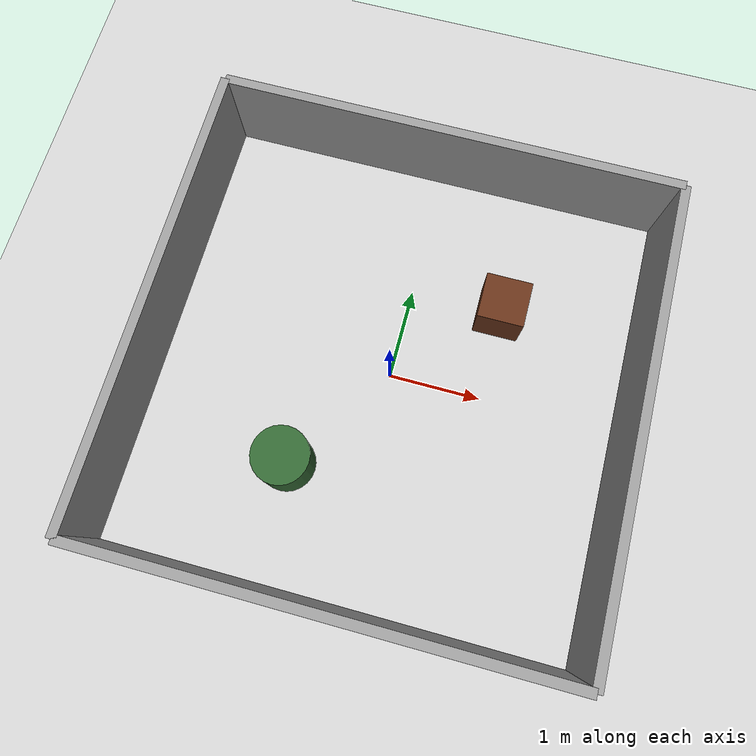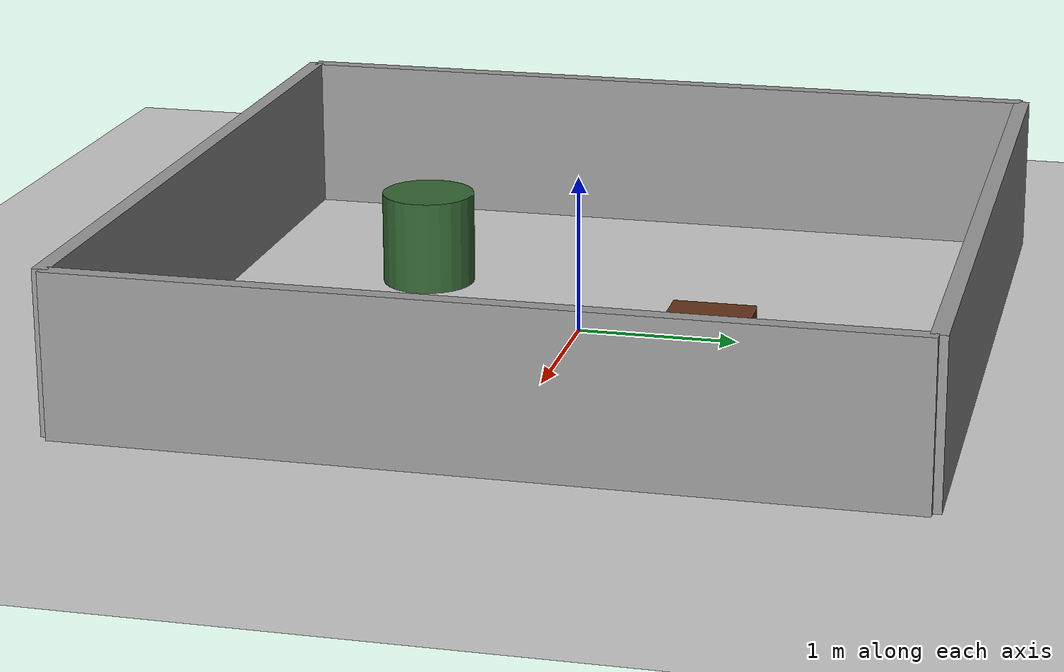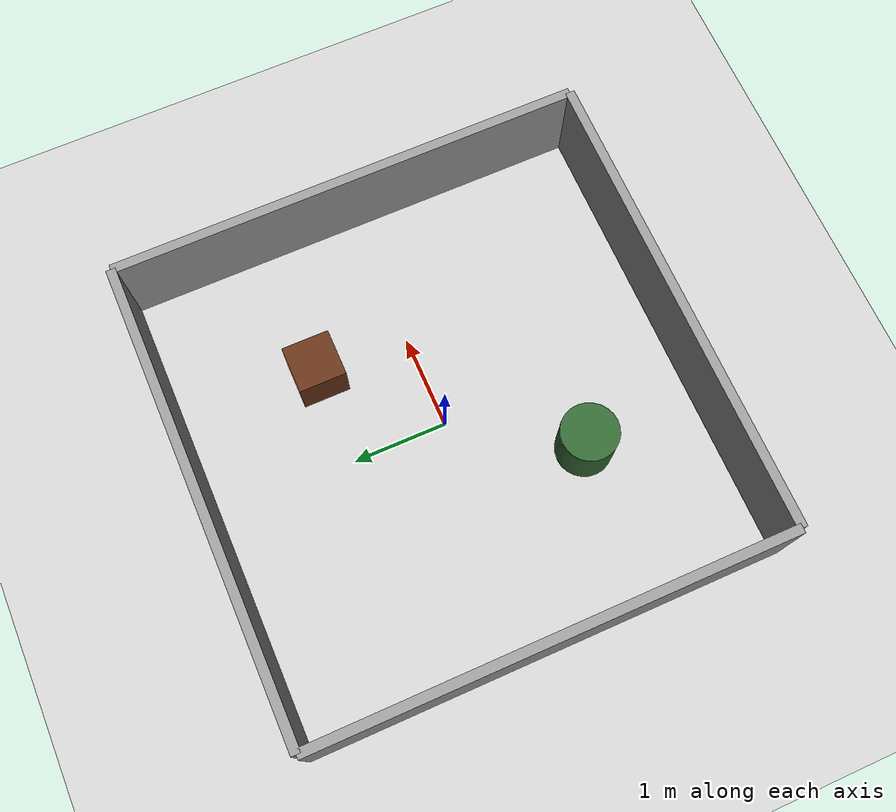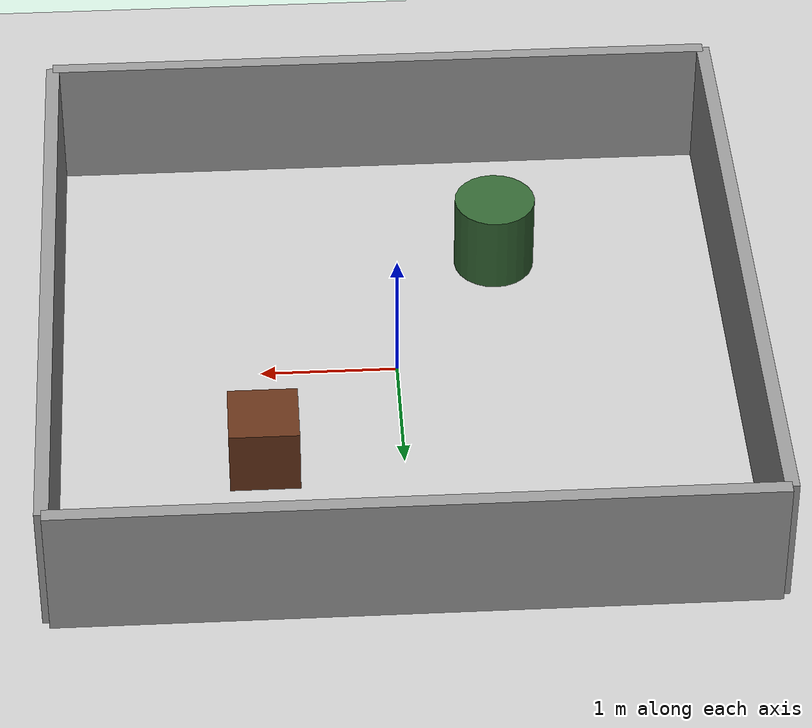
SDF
<?xml version="1.0" ?>
<sdf version="1.8">
  <world name="simple_room">
    <physics name="1ms" type="ignored">
      <max_step_size>0.001</max_step_size>
      <real_time_factor>1.0</real_time_factor>
    </physics>
    <plugin filename="gz-sim-physics-system" name="gz::sim::systems::Physics"/>
    <plugin filename="gz-sim-scene-broadcaster-system" name="gz::sim::systems::SceneBroadcaster"/>
    <plugin filename="gz-sim-user-commands-system" name="gz::sim::systems::UserCommands"/>
    <plugin filename="gz-sim-sensors-system" name="gz::sim::systems::Sensors">
      <render_engine>ogre2</render_engine>
    </plugin>
    <light type="directional" name="sun">
      <cast_shadows>true</cast_shadows>
      <pose>0 0 10 0 0 0</pose>
      <diffuse>0.8 0.8 0.8 1</diffuse>
      <direction>-0.5 0.1 -0.9</direction>
    </light>
    <model name="ground_plane">
      <static>true</static>
      <link name="link">
        <collision name="c"><geometry><plane><normal>0 0 1</normal><size>100 100</size></plane></geometry></collision>
        <visual name="v"><geometry><plane><normal>0 0 1</normal><size>100 100</size></plane></geometry>
          <material><ambient>0.8 0.8 0.8 1</ambient></material></visual>
      </link>
    </model>
    <!-- 5m x 5m room -->
    <model name="wall_n"><static>true</static><pose>0 2.5 0.5 0 0 0</pose>
      <link name="l"><collision name="c"><geometry><box><size>5 0.1 1</size></box></geometry></collision>
      <visual name="v"><geometry><box><size>5 0.1 1</size></box></geometry><material><ambient>0.6 0.6 0.6 1</ambient></material></visual></link></model>
    <model name="wall_s"><static>true</static><pose>0 -2.5 0.5 0 0 0</pose>
      <link name="l"><collision name="c"><geometry><box><size>5 0.1 1</size></box></geometry></collision>
      <visual name="v"><geometry><box><size>5 0.1 1</size></box></geometry><material><ambient>0.6 0.6 0.6 1</ambient></material></visual></link></model>
    <model name="wall_e"><static>true</static><pose>2.5 0 0.5 0 0 0</pose>
      <link name="l"><collision name="c"><geometry><box><size>0.1 5 1</size></box></geometry></collision>
      <visual name="v"><geometry><box><size>0.1 5 1</size></box></geometry><material><ambient>0.6 0.6 0.6 1</ambient></material></visual></link></model>
    <model name="wall_w"><static>true</static><pose>-2.5 0 0.5 0 0 0</pose>
      <link name="l"><collision name="c"><geometry><box><size>0.1 5 1</size></box></geometry></collision>
      <visual name="v"><geometry><box><size>0.1 5 1</size></box></geometry><material><ambient>0.6 0.6 0.6 1</ambient></material></visual></link></model>
    <!-- Obstacles -->
    <model name="box1"><static>true</static><pose>1 1 0.25 0 0 0</pose>
      <link name="l"><collision name="c"><geometry><box><size>0.5 0.5 0.5</size></box></geometry></collision>
      <visual name="v"><geometry><box><size>0.5 0.5 0.5</size></box></geometry><material><ambient>0.4 0.2 0.1 1</ambient></material></visual></link></model>
    <model name="cyl1"><static>true</static><pose>-0.8 -1.2 0.3 0 0 0</pose>
      <link name="l"><collision name="c"><geometry><cylinder><radius>0.3</radius><length>0.6</length></cylinder></geometry></collision>
      <visual name="v"><geometry><cylinder><radius>0.3</radius><length>0.6</length></cylinder></geometry><material><ambient>0.2 0.4 0.2 1</ambient></material></visual></link></model>
  </world>
</sdf>
